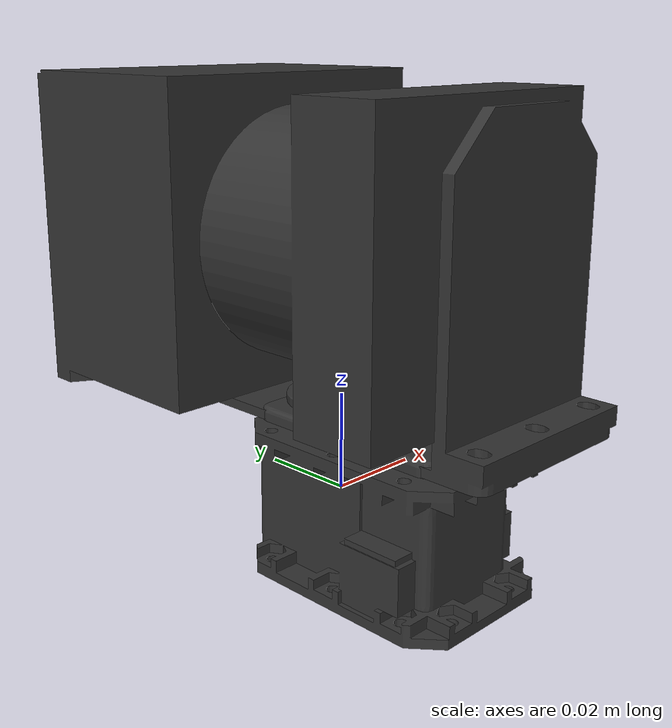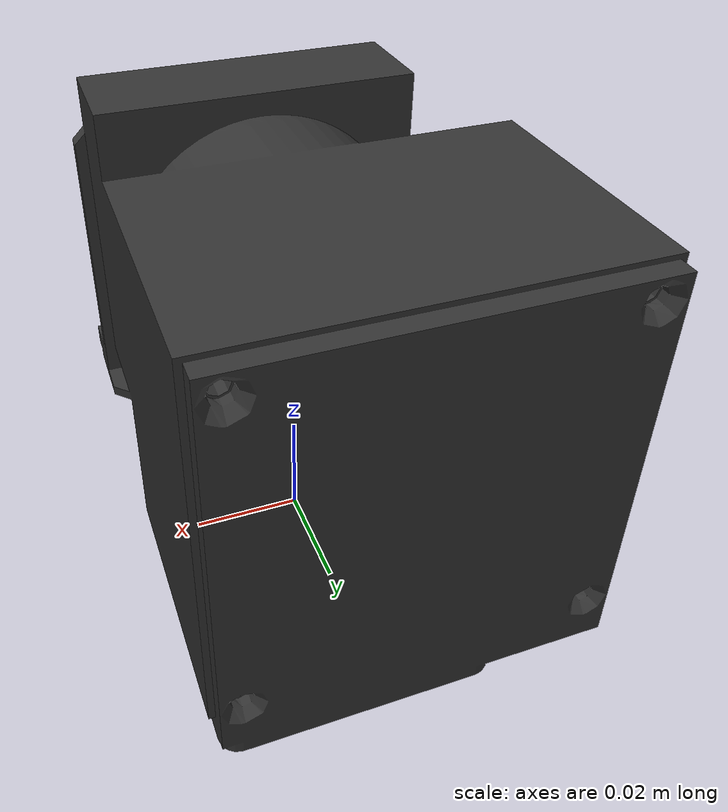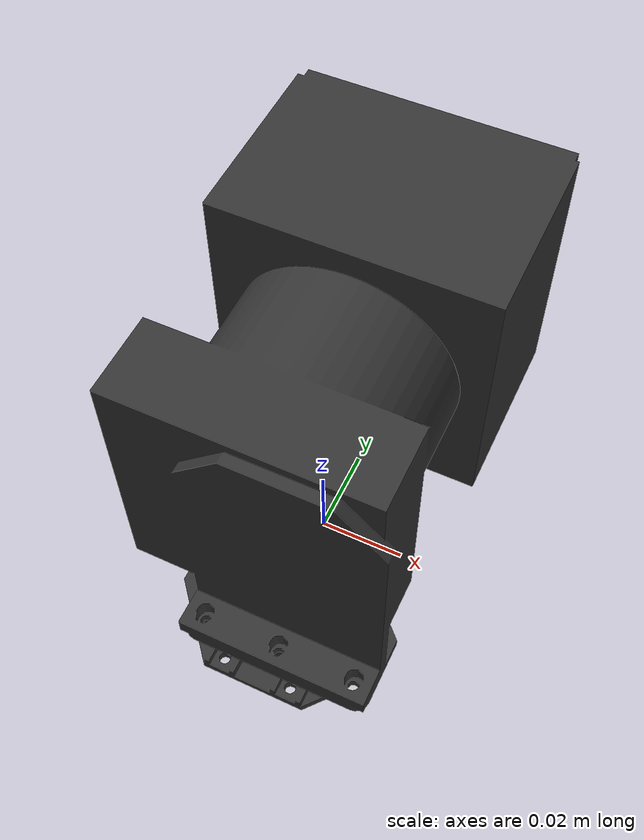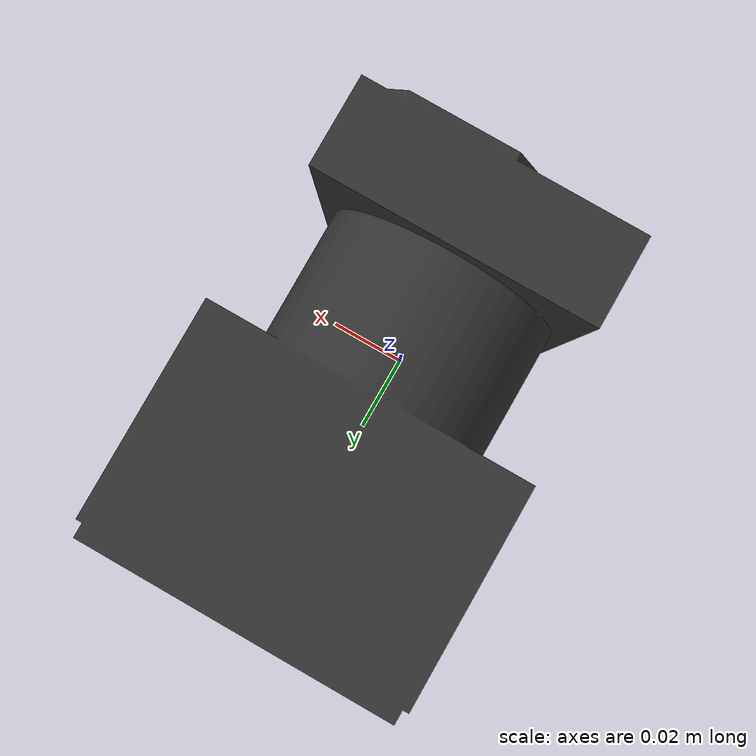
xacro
<?xml version="1.0"?>
<!-- Revolute-Revolute Manipulator -->
<robot name="snake_robot" xmlns:xacro="http://www.ros.org/wiki/xacro">

  <material name="grey">
    <color rgba="0.2 0.2 0.2 1.0"/>
  </material>

  <link name="world">
  </link>

  <joint name="world_fixed" type="fixed">
    <origin xyz="0 0 0" rpy="0 0 0"/>
    <parent link="world"/>
    <child link="base"/>
  </joint>

  <link name="base">
  </link>

  <joint name="base_fixed" type="fixed">
    <origin xyz="0 0 0.0" rpy="0 0 0"/>
    <parent link="base"/>
    <child link="dxl_rx_28_set"/>
  </joint>

  <link name="dxl_rx_28_set">
    <visual>
      <origin xyz="0 0 0" rpy="0 0 0"/>
      <geometry>
        <mesh filename="package://snake_robot_description/meshes/dxl_rx_28_set.stl" scale="0.001 0.001 0.001"/>
      </geometry>
      <material name="grey"/>
    </visual>
  </link>

  <joint name="lidar_joint" type="revolute">
    <parent link="dxl_rx_28_set"/>
    <child link="lidar_set"/>
    <origin xyz="0 0 0.02075" rpy="0 0 0"/>
    <axis xyz="0 0 1"/>
    <limit velocity="6.5" effort="1000" lower="${-pi*0.6}" upper="${pi*0.6}" />
    <dynamics damping="0.1" friction="0.0" />
  </joint> -->

  <link name="lidar_set">
    <visual>
      <origin xyz="0 0 0.03065" rpy="0 0 0"/>
      <geometry>
        <mesh filename="package://snake_robot_description/meshes/lidar_set.stl" scale="0.001 0.001 0.001"/>
      </geometry>
      <material name="grey"/>
    </visual>
  </link>

  <!-- lidar joint -->
  <joint name="lidar_fixed" type="fixed">
    <origin xyz="0.0 0.0 0.03065" rpy="1.5707963268 0 0"/>
    <parent link="lidar_set"/>
    <child link="lidar_link"/>
  </joint>

  <!-- lidar link -->
  <link name="lidar_link">
  </link>

</robot>
